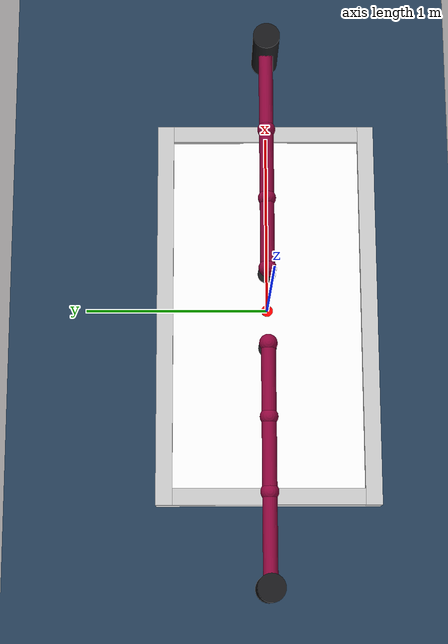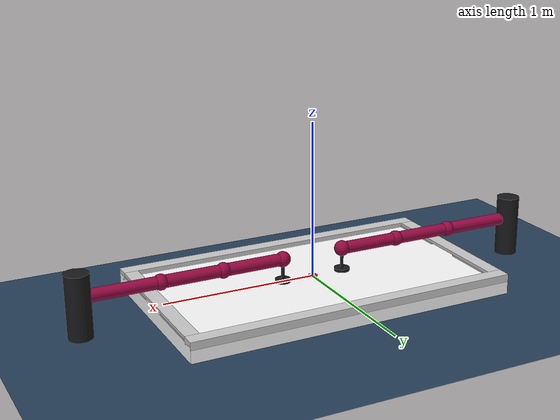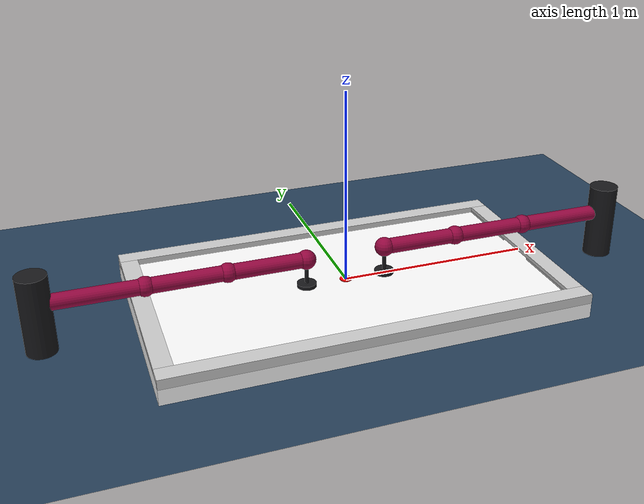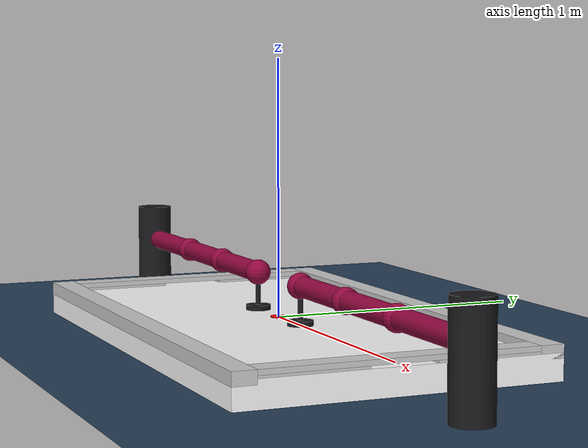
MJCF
<mujoco model="AirHockeySingle">

    <include file="table.xml"/>

    <include file="planar_robot_1.xml"/>

    <include file="planar_robot_2.xml"/>

    <asset>
        <texture type="skybox" builtin="gradient" rgb1="0.3 0.5 0.7" rgb2="0 0 0" width="512"
            height="3072"/>
        <texture type="2d" name="groundplane" builtin="checker" mark="edge" rgb1="0.2 0.3 0.4"
            rgb2="0.1 0.2 0.3" markrgb="0.8 0.8 0.8" width="300" height="300"/>
        <material name="groundplane" texture="groundplane" texuniform="true" texrepeat="5 5"
            reflectance="0"/>
    </asset>

    <contact>
        <exclude body1="planar_robot_1/body_ee" body2="table"/>
        <exclude body1="planar_robot_1/body_hand" body2="table"/>
        <exclude body1="planar_robot_1/body_3" body2="table"/>
        <exclude body1="planar_robot_1/body_2" body2="table"/>
        <exclude body1="planar_robot_1/body_1" body2="table"/>
        <exclude body1="planar_robot_1/base" body2="table"/>

        <exclude body1="planar_robot_2/body_ee" body2="table"/>
        <exclude body1="planar_robot_2/body_hand" body2="table"/>
        <exclude body1="planar_robot_2/body_3" body2="table"/>
        <exclude body1="planar_robot_2/body_2" body2="table"/>
        <exclude body1="planar_robot_2/body_1" body2="table"/>
        <exclude body1="planar_robot_2/base" body2="table"/>
    </contact>

    <worldbody>
        <light pos="0 0 3" dir="0 0 -1" directional="true"/>
        <geom pos="0 0 -0.1" name="floor" size="0 0 0.05" type="plane" material="groundplane"/>
    </worldbody>

</mujoco>

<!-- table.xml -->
<mujoco model="table">

    <option cone="elliptic">
        <flag multiccd="enable"/>
    </option>

    <asset>
        <material name="grey" specular="0.5" shininess="0.25" rgba="0.8 0.8 0.8 1"/>
        <material name="white" specular="0.5" shininess="0.25" rgba="1.0 1.0 1.0 1"/>
        <material name="red" specular="0.5" shininess="0.25" rgba="1.0 0.0 0.0 1"/>
    </asset>

    <default>
        <geom condim="4" solref="0.02 0.3"/>
        <default class="rim">
            <geom type="box" material="grey" friction="0.12931021481683416 0.0 0.0"/>
        </default>
    </default>

    <worldbody>
        <body name="puck" pos="0 0 0">
            <freejoint name="puck"/>
            <geom pos="0 0 0.00245" name="puck" type="cylinder" material="red" size="0.03165 0.00245" friction="0.0 0.002104678089464182 0"/>
            <inertial pos="0 0 0" mass="0.01" diaginertia="0.01 0.01 5e-6"/>
        </body>

        <body name="table">
            <geom name="surface" type="box" material="white" size="1.0695 0.61 0.0505" pos="0 0 -0.0505" friction="0.0002959345937628299 0.0 0.0"/>

            <geom name="rim_home_l" class="rim" size="0.045 0.198 0.005" pos="-1.0245 0.323 0.005"/>
            <geom name="rim_home_r" class="rim" size="0.045 0.198 0.005" pos="-1.0245 -0.323 0.005"/>
            <geom name="rim_home_top" class="rim" size="0.045 0.521 0.01" pos="-1.0245 0 0.02"/>

            <geom name="rim_left" class="rim" size="1.0695 0.045 0.025" pos="0 0.566 0.005"/>
            <geom name="rim_right" class="rim" size="1.0695 0.045 0.025" pos="0 -0.566 0.005"/>

            <geom name="rim_away_l" class="rim" size="0.045 0.198 0.005" pos="1.0245 0.323 0.005"/>
            <geom name="rim_away_r" class="rim" size="0.045 0.198 0.005" pos="1.0245 -0.323 0.005"/>
            <geom name="rim_away_top" class="rim" size="0.045 0.521 0.01" pos="1.0245 0 0.02"/>
        </body>
    </worldbody>
</mujoco>

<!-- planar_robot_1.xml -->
<mujoco model="planar_robot_1">
    <compiler autolimits="true" angle="radian"/>
    <asset>
        <material name="dark_red" rgba="0.58 0.03 0.25 1"/>
        <material name="black" rgba="0.1 0.1 0.11 1"/>
    </asset>

    <default>
        <default class="visual">
            <geom contype="0" conaffinity="0"/>
        </default>
    </default>

    <worldbody>
        <body name="planar_robot_1/base" pos="-1.51 0 -0.1">
            <geom type="cylinder" material="black" size="0.075 0.2" pos="0 0 0.2" class="visual"/>
            <inertial pos="0 0 0" mass="1" diaginertia="0.05 0.018 0.044"/>
            <body name="planar_robot_1/body_1" pos="0 0 0.25">
                <joint name="planar_robot_1/joint_1" axis="0 0 1" range="-2.9670597283903604 2.9670597283903604"/>
                <inertial pos="0.25 0 0" mass="3" diaginertia="0.064375 0.064375 0.00375"/>
                <geom type="cylinder" material="dark_red" size="0.04 0.25" euler="0 1.57079632679 0" pos="0.25 0 0"/>
                <body name="planar_robot_1/body_2" pos="0.5 0 0" >
                    <joint name="planar_robot_1/joint_2" axis="0 0 1" range="-2.0943951023931953 2.0943951023931953"/>
                    <inertial pos="0.2 0 0" mass="2" diaginertia="0.0335 0.0335 0.003"/>
                    <geom type="cylinder" material="dark_red" size="0.04 0.2" euler="0 1.57079632679 0" pos="0.2 0 0"/>
                    <geom type="sphere" material="dark_red" size="0.05"/>
                    <body name="planar_robot_1/body_3" pos="0.4 0 0" >
                        <joint name="planar_robot_1/joint_3" axis="0 0 1" range="-2.0943951023931953 2.0943951023931953"/>
                        <inertial pos="0.2 0 0" mass="2" diaginertia="0.0335 0.0335 0.003"/>
                        <geom type="cylinder" material="dark_red" size="0.04 0.2" euler="0 1.57079632679 0" pos="0.2 0 0"/>
                        <geom type="sphere" material="dark_red" size="0.05"/>
                        <body name="planar_robot_1/body_hand" pos="0.4 0 0">
                            <inertial pos="0 0 0" mass="0.1" diaginertia="0.0008 0.0023 0.0023"/>
                            <geom type="sphere" material="dark_red" size="0.05"/>
                            <geom type="cylinder" material="black" size="0.01 0.075" pos="0 0 -0.075"/>
                            <body name="planar_robot_1/body_ee" pos="0 0 -0.15">
                                <inertial pos="0 0 0" mass="0.1" diaginertia="0.0008 0.0023 0.0023"/>
                                <geom name="planar_robot_1/ee" type="cylinder" material="black" size="0.05 0.01" pos="0 0 0.01" friction="0 0 0"/>
                            </body>
                        </body>
                    </body>
                </body>
            </body>
        </body>
    </worldbody>

    <actuator>
        <motor name="planar_robot_1/joint_1" joint="planar_robot_1/joint_1" ctrlrange="-40 40"/>
        <motor name="planar_robot_1/joint_2" joint="planar_robot_1/joint_2" ctrlrange="-15 15"/>
        <motor name="planar_robot_1/joint_3" joint="planar_robot_1/joint_3" ctrlrange="-5 5"/>
    </actuator>
</mujoco>

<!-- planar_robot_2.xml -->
<mujoco model="planar_robot_2">
    <compiler autolimits="true" angle="radian"/>

    <worldbody>
        <body name="planar_robot_2/base" pos="1.51 0 -0.1" quat="0 0 0 1">
            <geom type="cylinder" material="black" size="0.075 0.2" pos="0 0 0.2" class="visual"/>
            <inertial pos="0 0 0" mass="1" diaginertia="0.05 0.018 0.044"/>
            <body name="planar_robot_2/body_1" pos="0 0 0.25">
                <joint name="planar_robot_2/joint_1" axis="0 0 1" range="-2.9670597283903604 2.9670597283903604"/>
                <inertial pos="0.25 0 0" mass="3" diaginertia="0.064375 0.064375 0.00375"/>
                <geom type="cylinder" material="dark_red" size="0.04 0.25" euler="0 1.57079632679 0" pos="0.25 0 0"/>
                <body name="planar_robot_2/body_2" pos="0.5 0 0" >
                    <joint name="planar_robot_2/joint_2" axis="0 0 1" range="-2.0943951023931953 2.0943951023931953"/>
                    <inertial pos="0.2 0 0" mass="2" diaginertia="0.0335 0.0335 0.003"/>
                    <geom type="cylinder" material="dark_red" size="0.04 0.2" euler="0 1.57079632679 0" pos="0.2 0 0"/>
                    <geom type="sphere" material="dark_red" size="0.05"/>
                    <body name="planar_robot_2/body_3" pos="0.4 0 0" >
                        <joint name="planar_robot_2/joint_3" axis="0 0 1" range="-2.0943951023931953 2.0943951023931953"/>
                        <inertial pos="0.2 0 0" mass="2" diaginertia="0.0335 0.0335 0.003"/>
                        <geom type="cylinder" material="dark_red" size="0.04 0.2" euler="0 1.57079632679 0" pos="0.2 0 0"/>
                        <geom type="sphere" material="dark_red" size="0.05"/>
                        <body name="planar_robot_2/body_hand" pos="0.4 0 0">
                            <inertial pos="0 0 0" mass="0.1" diaginertia="0.0008 0.0023 0.0023"/>
                            <geom type="sphere" material="dark_red" size="0.05"/>
                            <geom type="cylinder" material="black" size="0.01 0.075" pos="0 0 -0.075"/>
                            <body name="planar_robot_2/body_ee" pos="0 0 -0.15">
                                <inertial pos="0 0 0" mass="0.1" diaginertia="0.0008 0.0023 0.0023"/>
                                <geom name="planar_robot_2/ee" type="cylinder" material="black" size="0.05 0.01" pos="0 0 0.01" friction="0 0 0"/>
                            </body>
                        </body>
                    </body>
                </body>
            </body>
        </body>
    </worldbody>

    <actuator>
        <motor name="planar_robot_2/joint_1" joint="planar_robot_2/joint_1" ctrlrange="-40 40"/>
        <motor name="planar_robot_2/joint_2" joint="planar_robot_2/joint_2" ctrlrange="-15 15"/>
        <motor name="planar_robot_2/joint_3" joint="planar_robot_2/joint_3" ctrlrange="-5 5"/>
    </actuator>
</mujoco>
